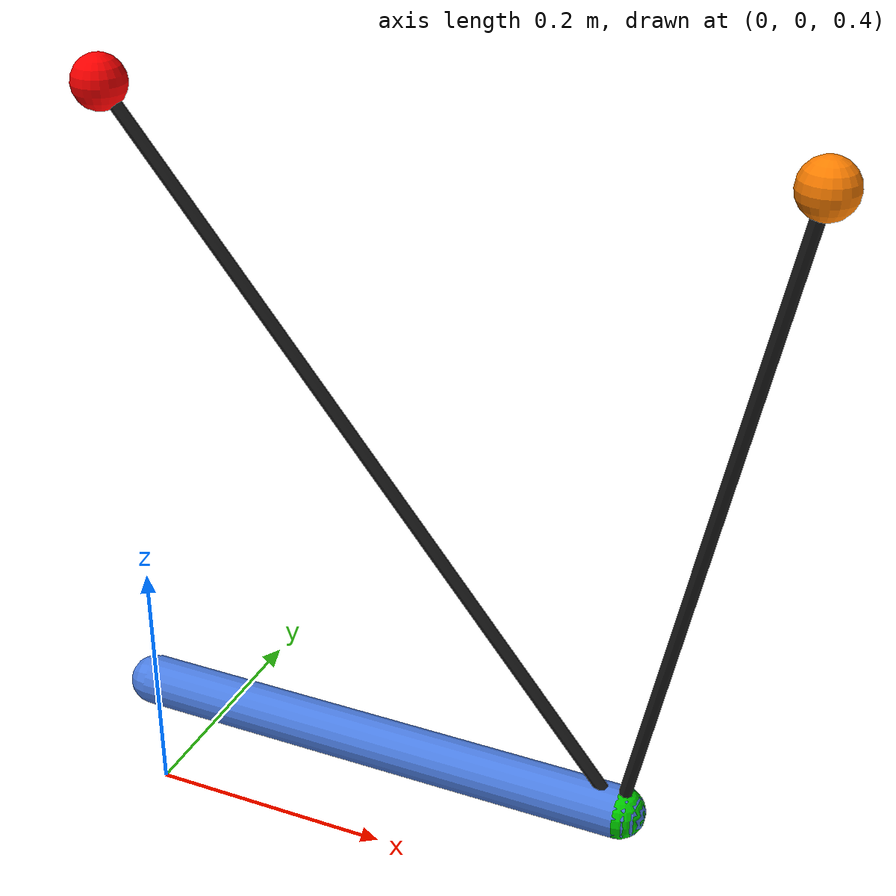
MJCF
<!-- INTENTIONALLY WRONG site order for NB05 routing demo -->
<mujoco model="pendulum_cable_intro_wrong_order">
  <option timestep="0.005" gravity="0 0 -9.81"/>  <!-- 5 ms timestep: stable for stiffness=100 -->

  <worldbody>
    <!-- Floor for visual reference -->
    <geom name="floor" type="plane" size="2 2 0.1" pos="0 0 0" rgba="0.8 0.8 0.8 1"/>
    <!-- Directional light for rendering -->
    <light name="main_light" pos="0 0 3" dir="0 0 -1" diffuse="1 1 1"/>

    <!-- Ceiling anchor site: fixed worldbody attachment for cable start -->
    <site name="anchor" pos="0 0 1.0" size="0.02" rgba="1 0 0 1"/>  <!-- red: cable start -->

    <!-- Via-point site: fixed corner that redirects the cable path -->
    <site name="via" pos="0.5 0 1.0" size="0.02" rgba="1 0.5 0 1"/>  <!-- orange: via-point -->

    <!-- Pendulum body: capsule rod pinned at world origin by y-axis hinge -->
    <body name="rod" pos="0 0 0.5">  <!-- pivot at z=0.5 (mid-height) -->
      <!-- Hinge joint: rotates in the x-z plane (axis = y-axis) -->
      <joint name="hinge" type="hinge" axis="0 1 0" damping="0.05"/>  <!-- small damping for free swing -->
      <!-- Capsule geom: extends from body origin to (0.4, 0, 0) -->
      <geom name="rod_geom" type="capsule" fromto="0 0 0  0.4 0 0"
            size="0.02" mass="0.3" rgba="0.3 0.5 0.9 1"/>  <!-- blue rod -->
      <!-- Tip site: cable attachment at the free end of the rod -->
      <site name="tip" pos="0.4 0 0" size="0.02" rgba="0 0.8 0 1"/>  <!-- green: cable end -->
    </body>
  </worldbody>

  <tendon>
    <!-- WRONG site order: anchor -> tip -> via (should be anchor -> via -> tip) -->
    <!-- This produces a geometrically different cable path and wrong force directions -->
    <spatial name="intro_cable" stiffness="100" springlength="0 0.8"
             width="0.005" rgba="0.1 0.1 0.1 1">  <!-- thin black cable -->
      <site site="anchor"/>  <!-- WRONG ORDER: ceiling -->
      <site site="tip"/>     <!-- WRONG: should be via here -->
      <site site="via"/>     <!-- WRONG: should be tip here -->
    </spatial>
  </tendon>
</mujoco>
